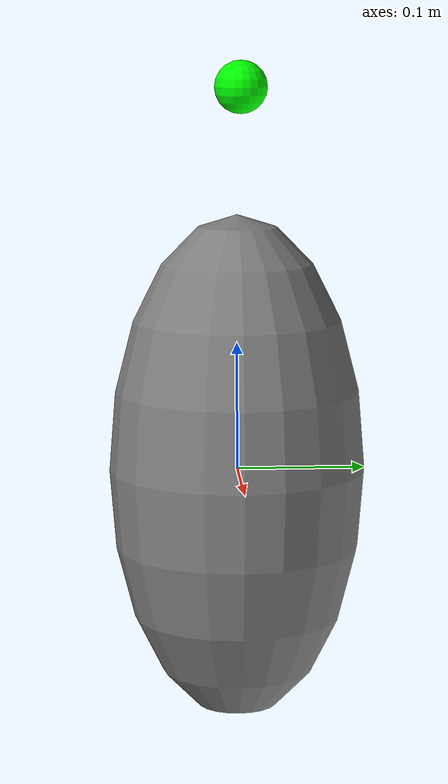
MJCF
<mujoco>
  <asset>
    <material name="floor" texture="checks" texrepeat="16 16" texuniform="true"/>
    <texture name="checks" builtin="checker" type='2d' width='256' height='256' rgb1 = "1 1 1" rgb2="0 0 0"/>
  </asset>
  <worldbody>
    <light name="top" pos="0 0 1"/>
    <geom name="hill" type="ellipsoid" pos="0.0 0.0 0.0" size=".1 .1 0.2" material="floor"/>
    <body pos="0.05 0.0 0.3">
      <joint type="free"/>
      <geom type="sphere" size=".02" rgba="0 1 0 1"/>
    </body>
  </worldbody>
</mujoco>
